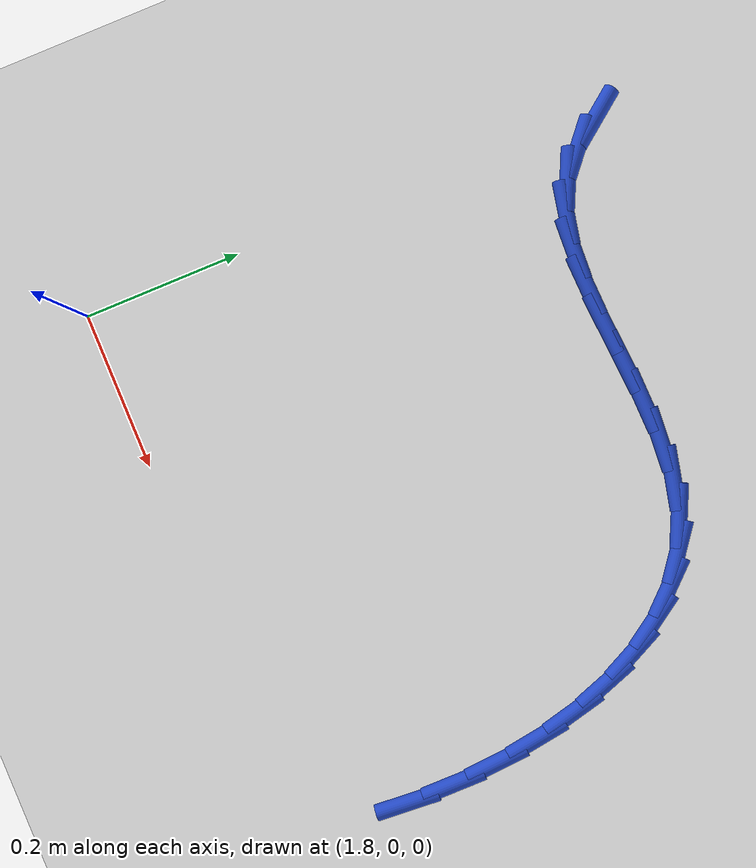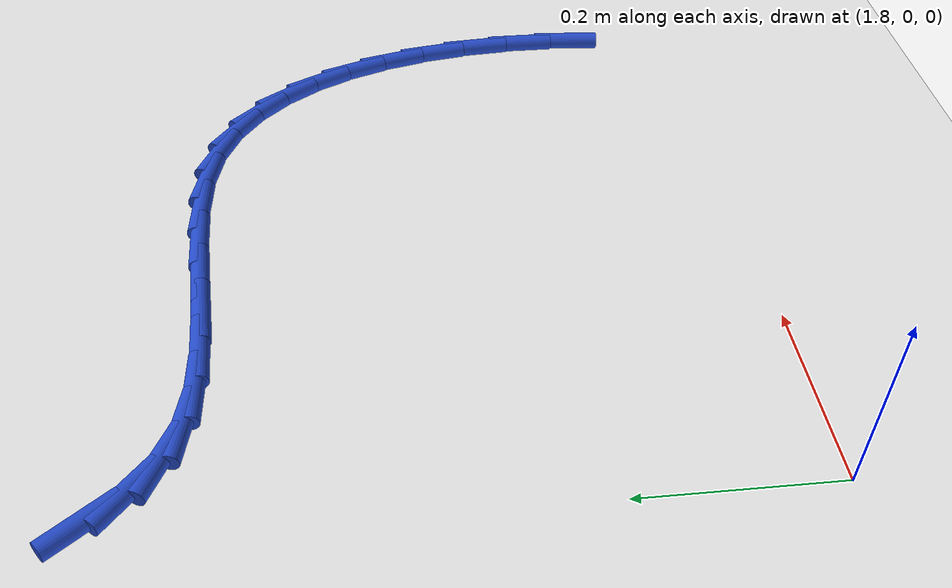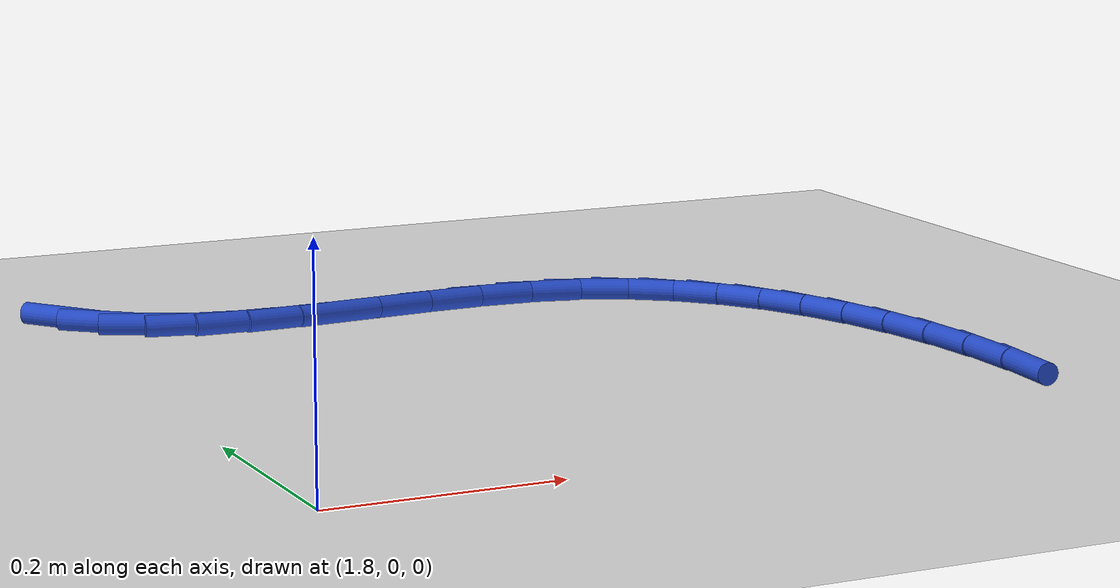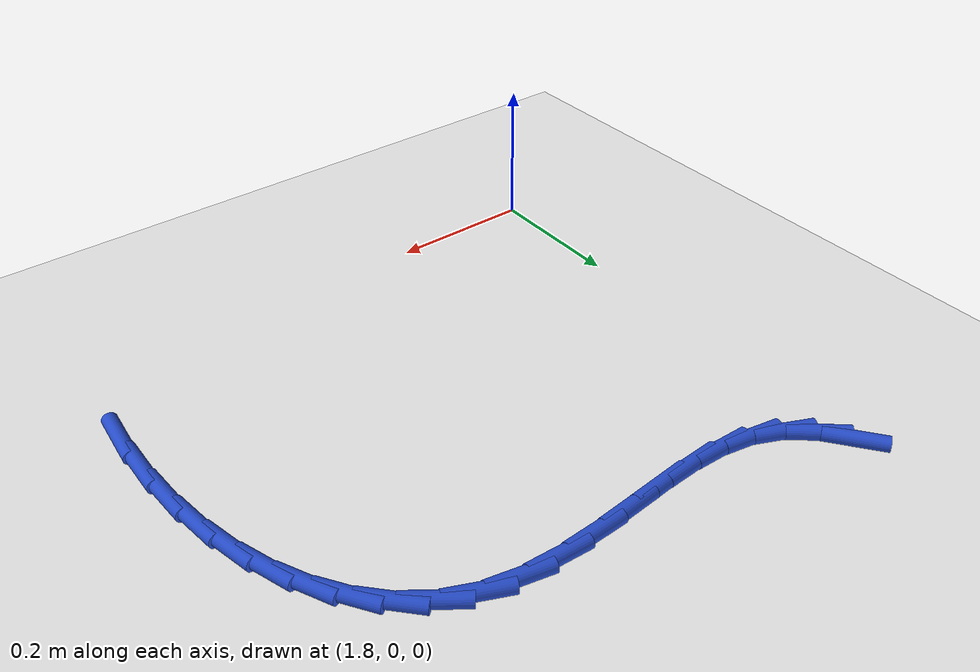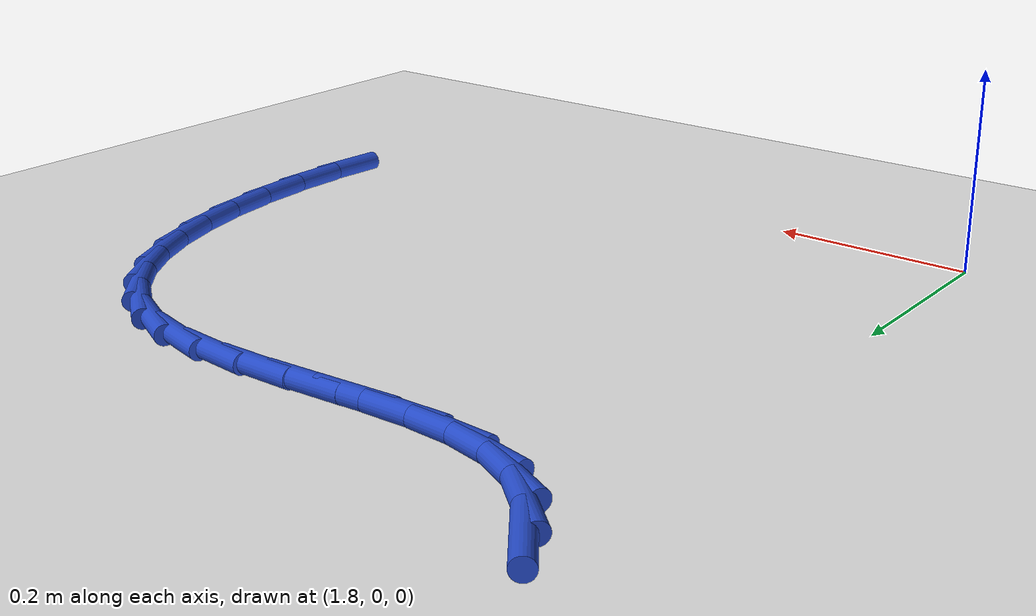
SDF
<sdf version="1.6">
 <world name="default">
  <model name="ground_plane">
   <static>1</static>
   <link name="link">
    <collision name="collision">
     <geometry><plane><normal>0 0 1</normal><size>100 100</size></plane></geometry>
     <surface><friction><ode><mu>100</mu><mu2>50</mu2></ode></friction></surface>
    </collision>
    <visual name="visual">
     <cast_shadows>0</cast_shadows>
     <geometry><plane><normal>0 0 1</normal><size>100 100</size></plane></geometry>
     <material>
      <script><uri>file://media/materials/scripts/gazebo.material</uri><name>Gazebo/WhiteGlow</name></script>
     </material>
    </visual>
   </link>
  </model>
  <model name="line">
   <link name="link_66">
    <pose>1.8153131287873314 0.6680529057846958 0.01 0 1.57 -0.9159595203525668</pose>
    <collision name="collision">
     <geometry><cylinder><radius>0.01</radius><length>0.08</length></cylinder></geometry>
    </collision>
    <visual name="visual">
     <material>
      <script><name>Gazebo/Blue</name><uri>file://media/materials/scripts/gazebo.material</uri></script>
     </material>
     <geometry><cylinder><radius>0.01</radius><length>0.08</length></cylinder></geometry>
    </visual>
   </link>
   <link name="link_67">
    <pose>1.841410712378856 0.634065688415619 0.01 0 1.57 -0.6983214270165936</pose>
    <collision name="collision">
     <geometry><cylinder><radius>0.01</radius><length>0.08</length></cylinder></geometry>
    </collision>
    <visual name="visual">
     <material>
      <script><name>Gazebo/Blue</name><uri>file://media/materials/scripts/gazebo.material</uri></script>
     </material>
     <geometry><cylinder><radius>0.01</radius><length>0.08</length></cylinder></geometry>
    </visual>
   </link>
   <link name="link_68">
    <pose>1.872646402754834 0.6078457317158806 0.01 0 1.57 -0.43341419690118843</pose>
    <collision name="collision">
     <geometry><cylinder><radius>0.01</radius><length>0.08</length></cylinder></geometry>
    </collision>
    <visual name="visual">
     <material>
      <script><name>Gazebo/Blue</name><uri>file://media/materials/scripts/gazebo.material</uri></script>
     </material>
     <geometry><cylinder><radius>0.01</radius><length>0.08</length></cylinder></geometry>
    </visual>
   </link>
   <link name="link_69">
    <pose>1.9099061513840796 0.5906034165425549 0.01 0 1.57 -0.19762858855695492</pose>
    <collision name="collision">
     <geometry><cylinder><radius>0.01</radius><length>0.08</length></cylinder></geometry>
    </collision>
    <visual name="visual">
     <material>
      <script><name>Gazebo/Blue</name><uri>file://media/materials/scripts/gazebo.material</uri></script>
     </material>
     <geometry><cylinder><radius>0.01</radius><length>0.08</length></cylinder></geometry>
    </visual>
   </link>
   <link name="link_70">
    <pose>1.9530285333860713 0.5819684889518411 0.01 0 1.57 -0.04561727477478427</pose>
    <collision name="collision">
     <geometry><cylinder><radius>0.01</radius><length>0.08</length></cylinder></geometry>
    </collision>
    <visual name="visual">
     <material>
      <script><name>Gazebo/Blue</name><uri>file://media/materials/scripts/gazebo.material</uri></script>
     </material>
     <geometry><cylinder><radius>0.01</radius><length>0.08</length></cylinder></geometry>
    </visual>
   </link>
   <link name="link_71">
    <pose>2.0006745013764835 0.5797935008586086 0.01 0 1.57 0.04021876936893844</pose>
    <collision name="collision">
     <geometry><cylinder><radius>0.01</radius><length>0.08</length></cylinder></geometry>
    </collision>
    <visual name="visual">
     <material>
      <script><name>Gazebo/Blue</name><uri>file://media/materials/scripts/gazebo.material</uri></script>
     </material>
     <geometry><cylinder><radius>0.01</radius><length>0.08</length></cylinder></geometry>
    </visual>
   </link>
   <link name="link_72">
    <pose>2.05144233515224 0.5818364222841795 0.01 0 1.57 0.07641702517180052</pose>
    <collision name="collision">
     <geometry><cylinder><radius>0.01</radius><length>0.08</length></cylinder></geometry>
    </collision>
    <visual name="visual">
     <material>
      <script><name>Gazebo/Blue</name><uri>file://media/materials/scripts/gazebo.material</uri></script>
     </material>
     <geometry><cylinder><radius>0.01</radius><length>0.08</length></cylinder></geometry>
    </visual>
   </link>
   <link name="link_73">
    <pose>2.103930314510269 0.5858552232498762 0.01 0 1.57 0.07094503947073964</pose>
    <collision name="collision">
     <geometry><cylinder><radius>0.01</radius><length>0.08</length></cylinder></geometry>
    </collision>
    <visual name="visual">
     <material>
      <script><name>Gazebo/Blue</name><uri>file://media/materials/scripts/gazebo.material</uri></script>
     </material>
     <geometry><cylinder><radius>0.01</radius><length>0.08</length></cylinder></geometry>
    </visual>
   </link>
   <link name="link_74">
    <pose>2.1567367192474984 0.5896078737770212 0.01 0 1.57 0.024055592485921002</pose>
    <collision name="collision">
     <geometry><cylinder><radius>0.01</radius><length>0.08</length></cylinder></geometry>
    </collision>
    <visual name="visual">
     <material>
      <script><name>Gazebo/Blue</name><uri>file://media/materials/scripts/gazebo.material</uri></script>
     </material>
     <geometry><cylinder><radius>0.01</radius><length>0.08</length></cylinder></geometry>
    </visual>
   </link>
   <link name="link_75">
    <pose>2.208459829160854 0.5908523438869365 0.01 0 1.57 -0.07107980603028365</pose>
    <collision name="collision">
     <geometry><cylinder><radius>0.01</radius><length>0.08</length></cylinder></geometry>
    </collision>
    <visual name="visual">
     <material>
      <script><name>Gazebo/Blue</name><uri>file://media/materials/scripts/gazebo.material</uri></script>
     </material>
     <geometry><cylinder><radius>0.01</radius><length>0.08</length></cylinder></geometry>
    </visual>
   </link>
   <link name="link_76">
    <pose>2.257697924047264 0.5873466036009447 0.01 0 1.57 -0.2271984995820998</pose>
    <collision name="collision">
     <geometry><cylinder><radius>0.01</radius><length>0.08</length></cylinder></geometry>
    </collision>
    <visual name="visual">
     <material>
      <script><name>Gazebo/Blue</name><uri>file://media/materials/scripts/gazebo.material</uri></script>
     </material>
     <geometry><cylinder><radius>0.01</radius><length>0.08</length></cylinder></geometry>
    </visual>
   </link>
   <link name="link_77">
    <pose>2.3030550958625855 0.5768604697796517 0.01 0 1.57 -0.43144308150764904</pose>
    <collision name="collision">
     <geometry><cylinder><radius>0.01</radius><length>0.08</length></cylinder></geometry>
    </collision>
    <visual name="visual">
     <material>
      <script><name>Gazebo/Blue</name><uri>file://media/materials/scripts/gazebo.material</uri></script>
     </material>
     <geometry><cylinder><radius>0.01</radius><length>0.08</length></cylinder></geometry>
    </visual>
   </link>
   <link name="link_78">
    <pose>2.3436336937689153 0.5581793497234452 0.01 0 1.57 -0.6341119963967284</pose>
    <collision name="collision">
     <geometry><cylinder><radius>0.01</radius><length>0.08</length></cylinder></geometry>
    </collision>
    <visual name="visual">
     <material>
      <script><name>Gazebo/Blue</name><uri>file://media/materials/scripts/gazebo.material</uri></script>
     </material>
     <geometry><cylinder><radius>0.01</radius><length>0.08</length></cylinder></geometry>
    </visual>
   </link>
   <link name="link_79">
    <pose>2.3794094033955324 0.5318687597921967 0.01 0 1.57 -0.8189782340382755</pose>
    <collision name="collision">
     <geometry><cylinder><radius>0.01</radius><length>0.08</length></cylinder></geometry>
    </collision>
    <visual name="visual">
     <material>
      <script><name>Gazebo/Blue</name><uri>file://media/materials/scripts/gazebo.material</uri></script>
     </material>
     <geometry><cylinder><radius>0.01</radius><length>0.08</length></cylinder></geometry>
    </visual>
   </link>
   <link name="link_80">
    <pose>2.410446227298878 0.4986742314580041 0.01 0 1.57 -0.9803338812710312</pose>
    <collision name="collision">
     <geometry><cylinder><radius>0.01</radius><length>0.08</length></cylinder></geometry>
    </collision>
    <visual name="visual">
     <material>
      <script><name>Gazebo/Blue</name><uri>file://media/materials/scripts/gazebo.material</uri></script>
     </material>
     <geometry><cylinder><radius>0.01</radius><length>0.08</length></cylinder></geometry>
    </visual>
   </link>
   <link name="link_81">
    <pose>2.4368081680353932 0.45934129619296427 0.01 0 1.57 -1.1181524190095937</pose>
    <collision name="collision">
     <geometry><cylinder><radius>0.01</radius><length>0.08</length></cylinder></geometry>
    </collision>
    <visual name="visual">
     <material>
      <script><name>Gazebo/Blue</name><uri>file://media/materials/scripts/gazebo.material</uri></script>
     </material>
     <geometry><cylinder><radius>0.01</radius><length>0.08</length></cylinder></geometry>
    </visual>
   </link>
   <link name="link_82">
    <pose>2.4585592281615214 0.4146154854691745 0.01 0 1.57 -1.2355011004110177</pose>
    <collision name="collision">
     <geometry><cylinder><radius>0.01</radius><length>0.08</length></cylinder></geometry>
    </collision>
    <visual name="visual">
     <material>
      <script><name>Gazebo/Blue</name><uri>file://media/materials/scripts/gazebo.material</uri></script>
     </material>
     <geometry><cylinder><radius>0.01</radius><length>0.08</length></cylinder></geometry>
    </visual>
   </link>
   <link name="link_83">
    <pose>2.4757634102337027 0.3652423307587322 0.01 0 1.57 -1.336399717010261</pose>
    <collision name="collision">
     <geometry><cylinder><radius>0.01</radius><length>0.08</length></cylinder></geometry>
    </collision>
    <visual name="visual">
     <material>
      <script><name>Gazebo/Blue</name><uri>file://media/materials/scripts/gazebo.material</uri></script>
     </material>
     <geometry><cylinder><radius>0.01</radius><length>0.08</length></cylinder></geometry>
    </visual>
   </link>
   <link name="link_84">
    <pose>2.48848471680838 0.311967363533734 0.01 0 1.57 -1.424719532891398</pose>
    <collision name="collision">
     <geometry><cylinder><radius>0.01</radius><length>0.08</length></cylinder></geometry>
    </collision>
    <visual name="visual">
     <material>
      <script><name>Gazebo/Blue</name><uri>file://media/materials/scripts/gazebo.material</uri></script>
     </material>
     <geometry><cylinder><radius>0.01</radius><length>0.08</length></cylinder></geometry>
    </visual>
   </link>
   <link name="link_85">
    <pose>2.4967871504419925 0.2555361152662783 0.01 0 1.57 -1.503809191341532</pose>
    <collision name="collision">
     <geometry><cylinder><radius>0.01</radius><length>0.08</length></cylinder></geometry>
    </collision>
    <visual name="visual">
     <material>
      <script><name>Gazebo/Blue</name><uri>file://media/materials/scripts/gazebo.material</uri></script>
     </material>
     <geometry><cylinder><radius>0.01</radius><length>0.08</length></cylinder></geometry>
    </visual>
   </link>
   <link name="link_86">
    <pose>2.5007347136909863 0.19669411742846182 0.01 0 1.57 1.5651226085435006</pose>
    <collision name="collision">
     <geometry><cylinder><radius>0.01</radius><length>0.08</length></cylinder></geometry>
    </collision>
    <visual name="visual">
     <material>
      <script><name>Gazebo/Blue</name><uri>file://media/materials/scripts/gazebo.material</uri></script>
     </material>
     <geometry><cylinder><radius>0.01</radius><length>0.08</length></cylinder></geometry>
    </visual>
   </link>
   <link name="link_87">
    <pose>2.500391409111799 0.13618690149238163 0.01 0 1.57 1.4965330152106084</pose>
    <collision name="collision">
     <geometry><cylinder><radius>0.01</radius><length>0.08</length></cylinder></geometry>
    </collision>
    <visual name="visual">
     <material>
      <script><name>Gazebo/Blue</name><uri>file://media/materials/scripts/gazebo.material</uri></script>
     </material>
     <geometry><cylinder><radius>0.01</radius><length>0.08</length></cylinder></geometry>
    </visual>
   </link>
  </model>
 </world>
</sdf>
